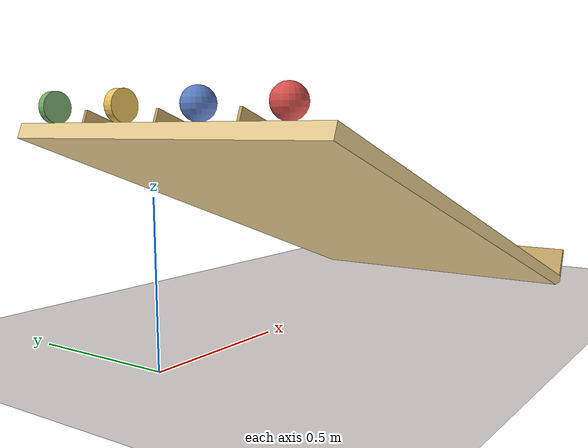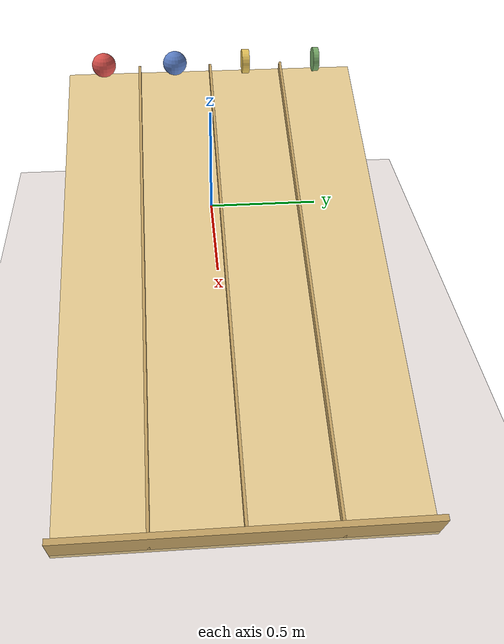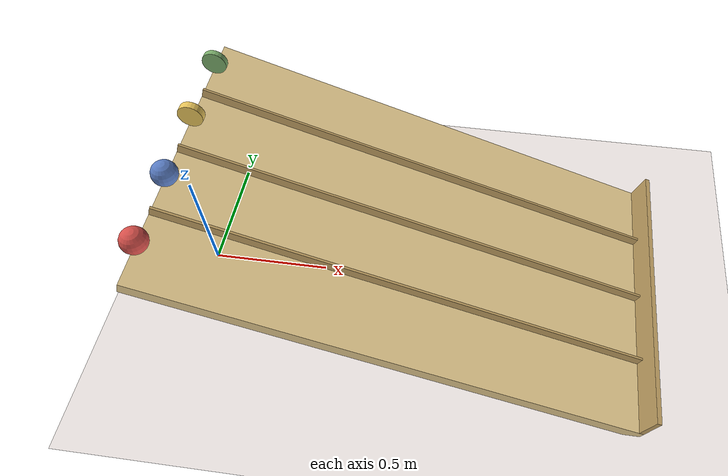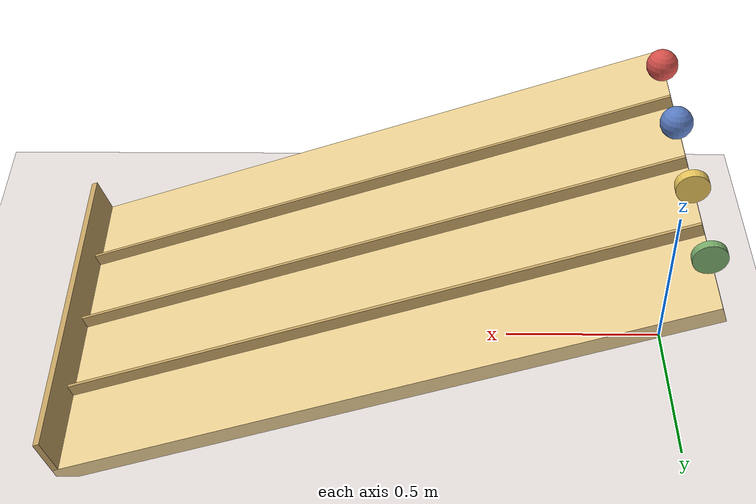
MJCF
<mujoco model="rolling_race">
  <compiler angle="radian" coordinate="local" autolimits="true"/>
  <option timestep="0.001" gravity="0 0 -9.81" integrator="implicitfast"
          impratio="3" cone="elliptic"/>

  <visual>
    <headlight diffuse="0 0 0" ambient="0.50 0.48 0.55" specular="0 0 0"/>
    <rgba haze="0.94 0.91 0.90 1"/>
    <global azimuth="120" elevation="-15" offwidth="1920" offheight="1080" fovy="36"/>
    <quality shadowsize="8192" offsamples="8"/>
    <map shadowclip="6" shadowscale="0.7"/>
  </visual>

  <asset>
    <texture type="skybox" builtin="flat"
             rgb1="0.74 0.68 0.86" rgb2="0.74 0.68 0.86"
             width="512" height="512" mark="none" markrgb="0 0 0"/>

    <material name="floor_mat"   rgba="0.94 0.91 0.90 1" specular="0" shininess="0"/>
    <material name="ramp_wood"   rgba="0.93 0.82 0.58 1" specular="0.12" shininess="0.15"/>
    <material name="ramp_wood_d" rgba="0.78 0.65 0.40 1" specular="0.12" shininess="0.15"/>
    <material name="solid_red"   rgba="0.86 0.32 0.30 1" specular="0.4" shininess="0.55"/>
    <material name="hollow_blue" rgba="0.36 0.50 0.78 1" specular="0.4" shininess="0.55"/>
    <material name="disk_yellow" rgba="0.92 0.78 0.36 1" specular="0.4" shininess="0.55"/>
    <material name="ring_green"  rgba="0.48 0.68 0.42 1" specular="0.4" shininess="0.55"/>
  </asset>

  <default>
    <!-- Friction high enough for pure rolling on the 20-deg slope.  Minimum
         for the ring (the hardest to roll without slipping) is mu = tan(20)/2
         ~ 0.18; we use 0.5. -->
    <geom friction="0.5 0.02 0.001" solref="0.005 1" solimp="0.95 0.99 0.001"/>
  </default>

  <worldbody>
    <light pos="0 0 12" dir="-0.30 0.55 -1" directional="true" castshadow="true"
           diffuse="0.85 0.82 0.78" specular="0.15 0.15 0.15"/>
    <light pos="0 0 8" dir="0.40 -0.30 -1" directional="true" castshadow="false"
           diffuse="0.28 0.28 0.34" specular="0 0 0"/>

    <geom name="floor" type="plane" size="40 40 0.1" material="floor_mat"/>

    <body name="ramp" pos="0.940 0 0.342" euler="0 0.349 0">
      <geom name="ramp_surface" type="box" size="1.0 0.6 0.025"
            material="ramp_wood"/>
      <geom name="div_neg" type="box" pos="0 -0.30 0.045"
            size="1.0 0.005 0.020" material="ramp_wood_d"/>
      <geom name="div_mid" type="box" pos="0  0    0.045"
            size="1.0 0.005 0.020" material="ramp_wood_d"/>
      <geom name="div_pos" type="box" pos="0  0.30 0.045"
            size="1.0 0.005 0.020" material="ramp_wood_d"/>
      <!-- Stopper at the bottom (body +x edge): tall enough to catch the
           rolling objects (ball radius is 0.05 above the ramp surface, so
           stopper top needs to be well above that). -->
      <geom name="stopper" type="box" pos="0.99 0 0.085"
            size="0.01 0.6 0.060" material="ramp_wood_d"/>
    </body>

    <!-- Lane 1 (y=-0.45): solid sphere.  MuJoCo computes I = (2/5)mR^2. -->
    <body name="solid_sphere" pos="0.026 -0.45 0.755">
      <freejoint/>
      <geom type="sphere" size="0.05" mass="0.10" material="solid_red"/>
    </body>

    <!-- Lane 2 (y=-0.15): hollow sphere.  Same visual sphere, but I overridden
         to (2/3)mR^2 = 1.667e-4. -->
    <body name="hollow_sphere" pos="0.026 -0.15 0.755">
      <freejoint/>
      <inertial pos="0 0 0" mass="0.10"
                diaginertia="1.667e-4 1.667e-4 1.667e-4"/>
      <geom type="sphere" size="0.05" mass="0" material="hollow_blue"/>
    </body>

    <body name="solid_disk" pos="0.026 0.15 0.755" quat="0.7071 0.7071 0 0">
      <freejoint/>
      <geom type="cylinder" size="0.05 0.015" mass="0.10" material="disk_yellow"/>
    </body>

    <!-- Lane 4 (y=+0.45): thin ring / hoop.  Same cylinder shape; I overridden
         so I_axial = mR^2, I_diam = (1/2)mR^2 (i.e. inertia of a thin hoop). -->
    <body name="ring" pos="0.026 0.45 0.755" quat="0.7071 0.7071 0 0">
      <freejoint/>
      <inertial pos="0 0 0" mass="0.10"
                diaginertia="1.25e-4 1.25e-4 2.5e-4"/>
      <geom type="cylinder" size="0.05 0.012" mass="0" material="ring_green"/>
    </body>

    <!-- Camera: front-low side view so we see all 4 lanes side by side
         AND the slope of the ramp.  Look-at the middle of the ramp surface. -->
    <camera name="cam" pos="1.05 -2.55 1.05" fovy="38"
            xyaxes="1.000 0.024 0   -0.006 0.255 0.967"/>
  </worldbody>
</mujoco>
